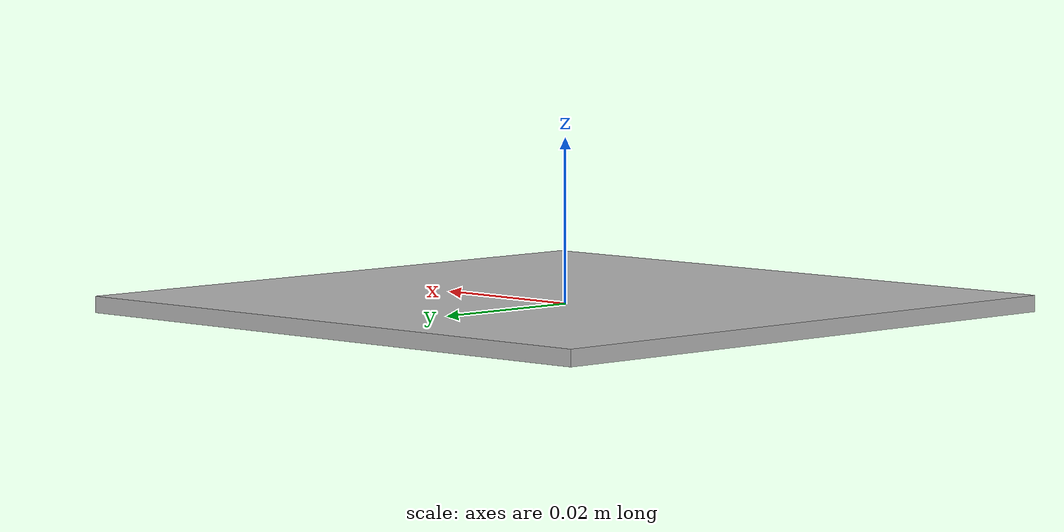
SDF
<?xml version="1.0" ?>
<sdf version="1.5">
  <model name="ar_marker_8cm_30">
    <link name="link">
      <gravity>false</gravity>
      <inertial>
        <pose>0 0 0 0 0 0</pose>
        <mass>0.01</mass>
        <inertia>
          <ixx>0.000079</ixx>
          <ixy>0</ixy>
          <ixz>0</ixz>
          <iyy>0.000079</iyy>
          <iyz>0</iyz>
          <izz>0.000025</izz>
        </inertia>
      </inertial>
      <visual name="visual">
        <pose>0 0 0 0 0 0</pose>
        <geometry>
          <mesh>
            <uri>model://ar_marker_8cm_30/meshes/ar_marker_8cm.dae</uri>
          </mesh>
        </geometry>
      </visual>
    </link>
  </model>
</sdf>
